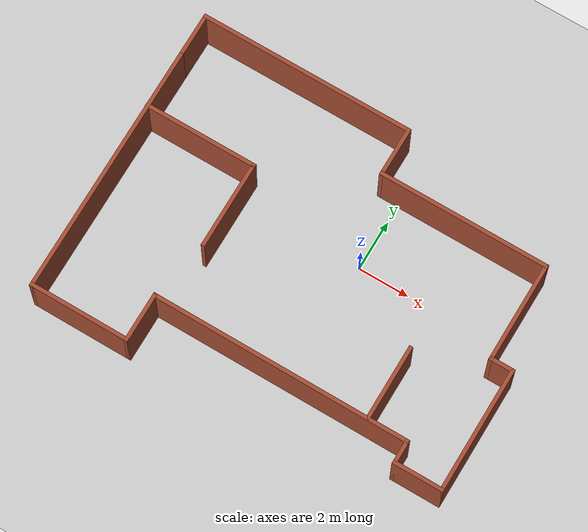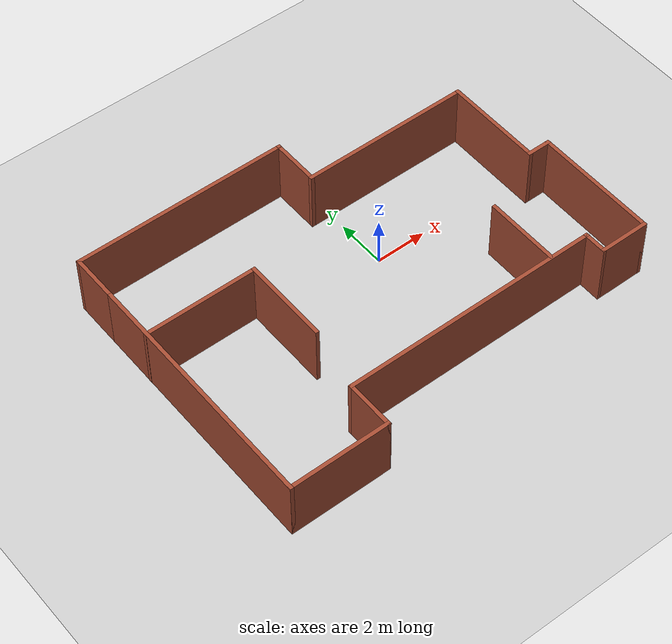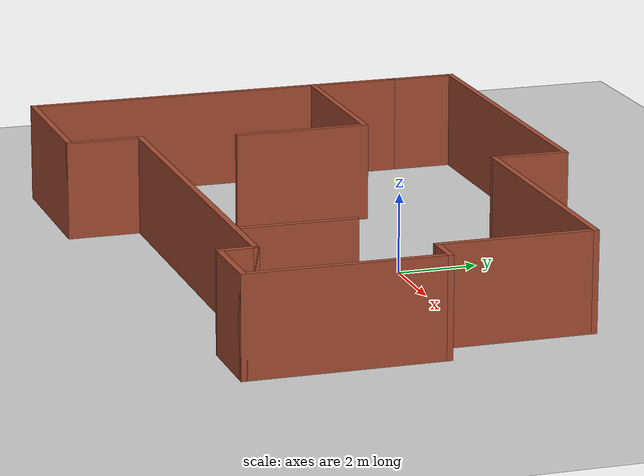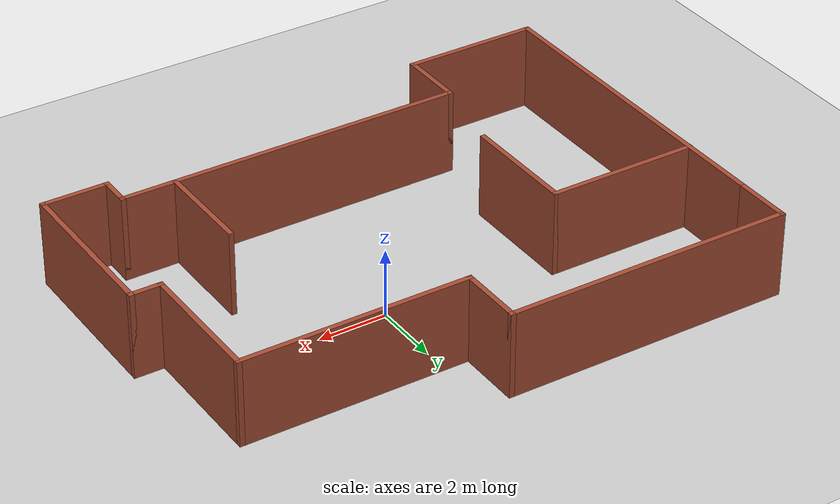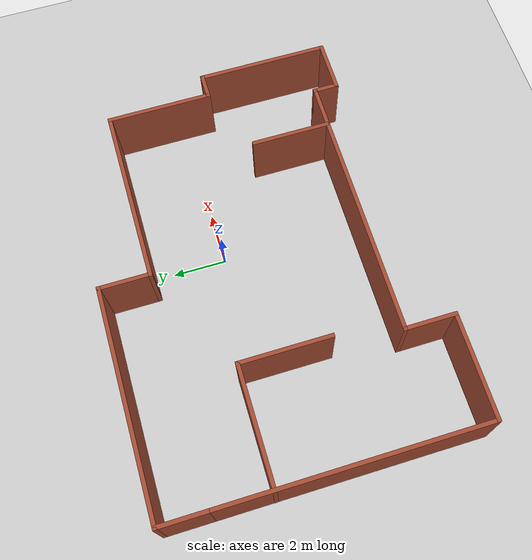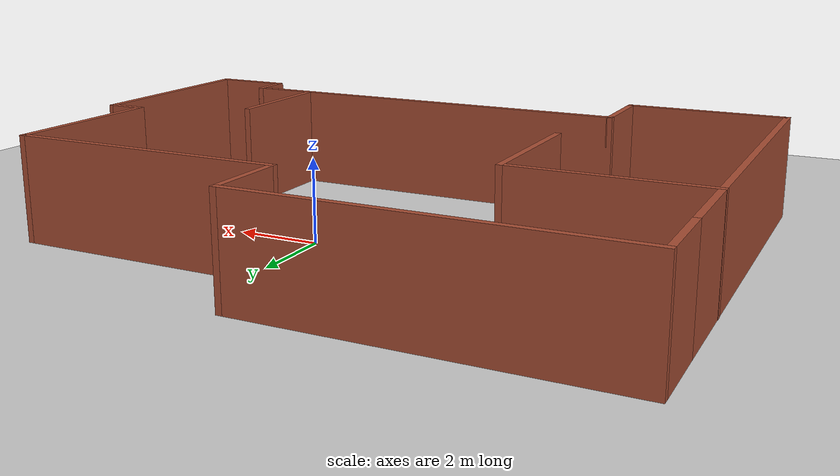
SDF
<sdf version="1.7">
 <world name="default">
  <light name="sun" type="directional">
   <pose>0 0 10 0 -0 0</pose>
   <diffuse>0.8 0.8 0.8 1</diffuse>
   <specular>0.2 0.2 0.2 1</specular>
   <attenuation>
    <range>1000</range>
    <constant>0.9</constant>
    <linear>0.01</linear>
    <quadratic>0.001</quadratic>
   </attenuation>
   <direction>-0.5 0.1 -0.9</direction>
   <spot><inner_angle>0</inner_angle><outer_angle>0</outer_angle><falloff>0</falloff></spot>
  </light>
  <model name="ground_plane">
   <static>1</static>
   <link name="link">
    <collision name="collision">
     <geometry><plane><normal>0 0 1</normal><size>100 100</size></plane></geometry>
     <surface>
      <contact><collide_bitmask>65535</collide_bitmask></contact>
      <friction><ode><mu>100</mu><mu2>50</mu2></ode></friction>
     </surface>
    </collision>
    <visual name="visual">
     <cast_shadows>0</cast_shadows>
     <geometry><plane><normal>0 0 1</normal><size>100 100</size></plane></geometry>
     <material>
      <script><uri>file://media/materials/scripts/gazebo.material</uri><name>Gazebo/Grey</name></script>
     </material>
    </visual>
   </link>
  </model>
  <gravity>0 0 -9.8</gravity>
  <magnetic_field>6e-06 2.3e-05 -4.2e-05</magnetic_field>
  <atmosphere type="adiabatic"/>
  <physics type="ode">
   <max_step_size>0.001</max_step_size>
   <real_time_factor>1</real_time_factor>
   <real_time_update_rate>1000</real_time_update_rate>
  </physics>
  <scene><ambient>0.4 0.4 0.4 1</ambient><background>0.7 0.7 0.7 1</background><shadows>1</shadows></scene>
  <spherical_coordinates>
   <surface_model>EARTH_WGS84</surface_model>
   <latitude_deg>0</latitude_deg>
   <longitude_deg>0</longitude_deg>
   <elevation>0</elevation>
   <heading_deg>0</heading_deg>
  </spherical_coordinates>
  <model name="my_world.world">
   <pose>-1.22189 -1.17505 0 0 -0 0</pose>
   <link name="Wall_10">
    <collision name="Wall_10_Collision">
     <geometry><box><size>2 0.15 2.5</size></box></geometry>
     <pose>0 0 1.25 0 -0 0</pose>
    </collision>
    <visual name="Wall_10_Visual">
     <pose>0 0 1.25 0 -0 0</pose>
     <geometry><box><size>2 0.15 2.5</size></box></geometry>
     <material>
      <script><uri>file://media/materials/scripts/gazebo.material</uri><name>Gazebo/Bricks</name></script>
      <ambient>1 1 1 1</ambient>
     </material>
     <meta><layer>0</layer></meta>
    </visual>
    <pose>6.97909 -4.775 0 0 -0 0</pose>
   </link>
   <link name="Wall_11">
    <collision name="Wall_11_Collision">
     <geometry><box><size>5 0.15 2.5</size></box></geometry>
     <pose>0 0 1.25 0 -0 0</pose>
    </collision>
    <visual name="Wall_11_Visual">
     <pose>0 0 1.25 0 -0 0</pose>
     <geometry><box><size>5 0.15 2.5</size></box></geometry>
     <material>
      <script><uri>file://media/materials/scripts/gazebo.material</uri><name>Gazebo/Bricks</name></script>
      <ambient>1 1 1 1</ambient>
     </material>
     <meta><layer>0</layer></meta>
    </visual>
    <pose>7.90409 -2.35 0 0 -0 1.5708</pose>
   </link>
   <link name="Wall_12">
    <collision name="Wall_12_Collision">
     <geometry><box><size>1 0.15 2.5</size></box></geometry>
     <pose>0 0 1.25 0 -0 0</pose>
    </collision>
    <visual name="Wall_12_Visual">
     <pose>0 0 1.25 0 -0 0</pose>
     <geometry><box><size>1 0.15 2.5</size></box></geometry>
     <material>
      <script><uri>file://media/materials/scripts/gazebo.material</uri><name>Gazebo/Bricks</name></script>
      <ambient>1 1 1 1</ambient>
     </material>
     <meta><layer>0</layer></meta>
    </visual>
    <pose>7.47909 0.075 0 0 -0 3.14159</pose>
   </link>
   <link name="Wall_13">
    <collision name="Wall_13_Collision">
     <geometry><box><size>4 0.15 2.5</size></box></geometry>
     <pose>0 0 1.25 0 -0 0</pose>
    </collision>
    <visual name="Wall_13_Visual">
     <pose>0 0 1.25 0 -0 0</pose>
     <geometry><box><size>4 0.15 2.5</size></box></geometry>
     <material>
      <script><uri>file://media/materials/scripts/gazebo.material</uri><name>Gazebo/Bricks</name></script>
      <ambient>1 1 1 1</ambient>
     </material>
     <meta><layer>0</layer></meta>
    </visual>
    <pose>7.05408 2 0 0 -0 1.5708</pose>
   </link>
   <link name="Wall_14">
    <collision name="Wall_14_Collision">
     <geometry><box><size>6.75 0.15 2.5</size></box></geometry>
     <pose>0 0 1.25 0 -0 0</pose>
    </collision>
    <visual name="Wall_14_Visual">
     <pose>0 0 1.25 0 -0 0</pose>
     <geometry><box><size>6.75 0.15 2.5</size></box></geometry>
     <material>
      <script><uri>file://media/materials/scripts/gazebo.material</uri><name>Gazebo/Bricks</name></script>
      <ambient>1 1 1 1</ambient>
     </material>
     <meta><layer>0</layer></meta>
    </visual>
    <pose>3.75408 3.925 0 0 -0 3.14159</pose>
   </link>
   <link name="Wall_15">
    <collision name="Wall_15_Collision">
     <geometry><box><size>2 0.15 2.5</size></box></geometry>
     <pose>0 0 1.25 0 -0 0</pose>
    </collision>
    <visual name="Wall_15_Visual">
     <pose>0 0 1.25 0 -0 0</pose>
     <geometry><box><size>2 0.15 2.5</size></box></geometry>
     <material>
      <script><uri>file://media/materials/scripts/gazebo.material</uri><name>Gazebo/Bricks</name></script>
      <ambient>1 1 1 1</ambient>
     </material>
     <meta><layer>0</layer></meta>
    </visual>
    <pose>0.454085 4.85 0 0 -0 1.5708</pose>
   </link>
   <link name="Wall_16">
    <collision name="Wall_16_Collision">
     <geometry><box><size>8.5 0.15 2.5</size></box></geometry>
     <pose>0 0 1.25 0 -0 0</pose>
    </collision>
    <visual name="Wall_16_Visual">
     <pose>0 0 1.25 0 -0 0</pose>
     <geometry><box><size>8.5 0.15 2.5</size></box></geometry>
     <material>
      <script><uri>file://media/materials/scripts/gazebo.material</uri><name>Gazebo/Bricks</name></script>
      <ambient>1 1 1 1</ambient>
     </material>
     <meta><layer>0</layer></meta>
    </visual>
    <pose>-3.72092 5.775 0 0 -0 3.14159</pose>
   </link>
   <link name="Wall_17">
    <collision name="Wall_17_Collision">
     <geometry><box><size>1.85 0.15 2.5</size></box></geometry>
     <pose>0 0 1.25 0 -0 0</pose>
    </collision>
    <visual name="Wall_17_Visual">
     <pose>0 0 1.25 0 -0 0</pose>
     <geometry><box><size>1.85 0.15 2.5</size></box></geometry>
     <material>
      <script><uri>file://media/materials/scripts/gazebo.material</uri><name>Gazebo/Bricks</name></script>
      <ambient>1 1 1 1</ambient>
     </material>
     <meta><layer>0</layer></meta>
    </visual>
    <pose>-7.89591 4.925 0 0 -0 -1.5708</pose>
   </link>
   <link name="Wall_21">
    <collision name="Wall_21_Collision">
     <geometry><box><size>4.5 0.15 2.5</size></box></geometry>
     <pose>0 0 1.25 0 -0 0</pose>
    </collision>
    <visual name="Wall_21_Visual">
     <pose>0 0 1.25 0 -0 0</pose>
     <geometry><box><size>4.5 0.15 2.5</size></box></geometry>
     <material>
      <script><uri>file://media/materials/scripts/gazebo.material</uri><name>Gazebo/Bricks</name></script>
      <ambient>1 1 1 1</ambient>
     </material>
     <meta><layer>0</layer></meta>
    </visual>
    <pose>-5.72909 1.8704 0 0 -0 0</pose>
   </link>
   <link name="Wall_22">
    <collision name="Wall_22_Collision">
     <geometry><box><size>3.5 0.15 2.5</size></box></geometry>
     <pose>0 0 1.25 0 -0 0</pose>
    </collision>
    <visual name="Wall_22_Visual">
     <pose>0 0 1.25 0 -0 0</pose>
     <geometry><box><size>3.5 0.15 2.5</size></box></geometry>
     <material>
      <script><uri>file://media/materials/scripts/gazebo.material</uri><name>Gazebo/Bricks</name></script>
      <ambient>1 1 1 1</ambient>
     </material>
     <meta><layer>0</layer></meta>
    </visual>
    <pose>-3.55409 0.1954 0 0 -0 -1.5708</pose>
   </link>
   <link name="Wall_32">
    <collision name="Wall_32_Collision">
     <geometry><box><size>3 0.15 2.5</size></box></geometry>
     <pose>0 0 1.25 0 -0 0</pose>
    </collision>
    <visual name="Wall_32_Visual">
     <pose>0 0 1.25 0 -0 0</pose>
     <geometry><box><size>3 0.15 2.5</size></box></geometry>
     <material>
      <script><uri>file://media/materials/scripts/gazebo.material</uri><name>Gazebo/Bricks</name></script>
      <ambient>1 1 1 1</ambient>
     </material>
     <meta><layer>0</layer></meta>
    </visual>
    <pose>4.48854 -2.46159 0 0 -0 1.5708</pose>
   </link>
   <link name="Wall_4">
    <collision name="Wall_4_Collision">
     <geometry><box><size>10 0.15 2.5</size></box></geometry>
     <pose>0 0 1.25 0 -0 0</pose>
    </collision>
    <visual name="Wall_4_Visual">
     <pose>0 0 1.25 0 -0 0</pose>
     <geometry><box><size>10 0.15 2.5</size></box></geometry>
     <material>
      <script><uri>file://media/materials/scripts/gazebo.material</uri><name>Gazebo/Bricks</name></script>
      <ambient>1 1 1 1</ambient>
     </material>
     <meta><layer>0</layer></meta>
    </visual>
    <pose>-7.89591 -0.85 0 0 -0 -1.5708</pose>
   </link>
   <link name="Wall_5">
    <collision name="Wall_5_Collision">
     <geometry><box><size>4 0.15 2.5</size></box></geometry>
     <pose>0 0 1.25 0 -0 0</pose>
    </collision>
    <visual name="Wall_5_Visual">
     <pose>0 0 1.25 0 -0 0</pose>
     <geometry><box><size>4 0.15 2.5</size></box></geometry>
     <material>
      <script><uri>file://media/materials/scripts/gazebo.material</uri><name>Gazebo/Bricks</name></script>
      <ambient>1 1 1 1</ambient>
     </material>
     <meta><layer>0</layer></meta>
    </visual>
    <pose>-5.97091 -5.775 0 0 -0 0</pose>
   </link>
   <link name="Wall_6">
    <collision name="Wall_6_Collision">
     <geometry><box><size>2 0.15 2.5</size></box></geometry>
     <pose>0 0 1.25 0 -0 0</pose>
    </collision>
    <visual name="Wall_6_Visual">
     <pose>0 0 1.25 0 -0 0</pose>
     <geometry><box><size>2 0.15 2.5</size></box></geometry>
     <material>
      <script><uri>file://media/materials/scripts/gazebo.material</uri><name>Gazebo/Bricks</name></script>
      <ambient>1 1 1 1</ambient>
     </material>
     <meta><layer>0</layer></meta>
    </visual>
    <pose>-4.04591 -4.85 0 0 -0 1.5708</pose>
   </link>
   <link name="Wall_7">
    <collision name="Wall_7_Collision">
     <geometry><box><size>10.25 0.15 2.5</size></box></geometry>
     <pose>0 0 1.25 0 -0 0</pose>
    </collision>
    <visual name="Wall_7_Visual">
     <pose>0 0 1.25 0 -0 0</pose>
     <geometry><box><size>10.25 0.15 2.5</size></box></geometry>
     <material>
      <script><uri>file://media/materials/scripts/gazebo.material</uri><name>Gazebo/Bricks</name></script>
      <ambient>1 1 1 1</ambient>
     </material>
     <meta><layer>0</layer></meta>
    </visual>
    <pose>1.00408 -3.925 0 0 -0 0</pose>
   </link>
   <link name="Wall_9">
    <collision name="Wall_9_Collision">
     <geometry><box><size>1 0.15 2.5</size></box></geometry>
     <pose>0 0 1.25 0 -0 0</pose>
    </collision>
    <visual name="Wall_9_Visual">
     <pose>0 0 1.25 0 -0 0</pose>
     <geometry><box><size>1 0.15 2.5</size></box></geometry>
     <material>
      <script><uri>file://media/materials/scripts/gazebo.material</uri><name>Gazebo/Bricks</name></script>
      <ambient>1 1 1 1</ambient>
     </material>
     <meta><layer>0</layer></meta>
    </visual>
    <pose>6.05408 -4.35 0 0 -0 -1.5708</pose>
   </link>
   <static>1</static>
  </model>
 </world>
</sdf>
